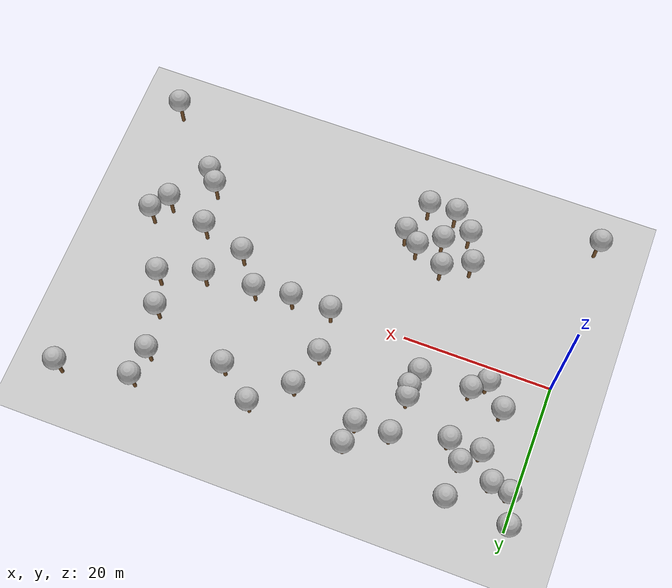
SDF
<sdf version='1.7'>
            <world name='default'>
                <light name='sun' type='directional'>
                <cast_shadows>1</cast_shadows>
                <pose>0 0 10 0 -0 0</pose>
                <diffuse>0.8 0.8 0.8 1</diffuse>
                <specular>0.2 0.2 0.2 1</specular>
                <attenuation>
                    <range>1000</range>
                    <constant>0.9</constant>
                    <linear>0.01</linear>
                    <quadratic>0.001</quadratic>
                </attenuation>
                <direction>-0.5 0.1 -0.9</direction>
                <spot>
                    <inner_angle>0</inner_angle>
                    <outer_angle>0</outer_angle>
                    <falloff>0</falloff>
                </spot>
                </light>
                <model name='ground_plane'>
                <static>1</static>
                <link name='link'>
                    <collision name='collision'>
                    <geometry>
                        <plane>
                        <normal>0 0 1</normal>
                        <size>100 100</size>
                        </plane>
                    </geometry>
                    <surface>
                        <contact>
                        <collide_bitmask>65535</collide_bitmask>
                        <ode/>
                        </contact>
                        <friction>
                        <ode>
                            <mu>100</mu>
                            <mu2>50</mu2>
                        </ode>
                        <torsional>
                            <ode/>
                        </torsional>
                        </friction>
                        <bounce/>
                    </surface>
                    <max_contacts>10</max_contacts>
                    </collision>
                    <visual name='visual'>
                    <cast_shadows>0</cast_shadows>
                    <geometry>
                        <plane>
                        <normal>0 0 1</normal>
                        <size>100 100</size>
                        </plane>
                    </geometry>
                    <material>
                        <script>
                        <uri>file://media/materials/scripts/gazebo.material</uri>
                        <name>Gazebo/Grey</name>
                        </script>
                    </material>
                    </visual>
                    <self_collide>0</self_collide>
                    <enable_wind>0</enable_wind>
                    <kinematic>0</kinematic>
                </link>
                </model>
                <gravity>0 0 -9.8</gravity>
                <magnetic_field>6e-06 2.3e-05 -4.2e-05</magnetic_field>
                <atmosphere type='adiabatic'/>
                <physics type='ode'>
                <max_step_size>0.001</max_step_size>
                <real_time_factor>1</real_time_factor>
                <real_time_update_rate>1000</real_time_update_rate>
                </physics>
                <scene>
                <ambient>0.4 0.4 0.4 1</ambient>
                <background>0.7 0.7 0.7 1</background>
                <shadows>1</shadows>
                </scene>
                <wind/>
                <spherical_coordinates>
                <surface_model>EARTH_WGS84</surface_model>
                <latitude_deg>0</latitude_deg>
                <longitude_deg>0</longitude_deg>
                <elevation>0</elevation>
                <heading_deg>0</heading_deg>
                </spherical_coordinates>

    <model name='tree_simple498'>
      <static>1</static>
      <link name='link'>
        <pose frame=''>0 0 0.1 0 -0 0</pose>
        <collision name='collision_trunk'>
          <pose frame=''>0 0 2 0 -0 0</pose>
          <geometry>
            <cylinder>
              <radius>0.25</radius>
              <length>4</length>
            </cylinder>
          </geometry>
        </collision>
        <collision name='collision_treetop'>
          <pose frame=''>0 0 5.2 0 -0 0</pose>
          <geometry>
            <sphere>
              <radius>1.5</radius>
            </sphere>
          </geometry>
        </collision>
        <visual name='trunk'>
          <pose frame=''>0 0 2 0 -0 0</pose>
          <geometry>
            <cylinder>
              <radius>0.25</radius>
              <length>4</length>
            </cylinder>
          </geometry>
          <material>
            <script>
              <uri>model://tree_simple/scripts</uri>
              <uri>model://tree_simple/materials/textures</uri>
              <name>TreeSimple/Trunk</name>
            </script>
          </material>
        </visual>
        <visual name='treetop'>
          <pose frame=''>0 0 5.2 0 -0 0</pose>
          <geometry>
            <sphere>
              <radius>1.5</radius>
            </sphere>
          </geometry>
          <material>
            <script>
              <uri>model://tree_simple/scripts</uri>
              <uri>model://tree_simple/materials/textures</uri>
              <name>TreeSimple/Treetop</name>
            </script>
          </material>
        </visual>
        <self_collide>0</self_collide>
        <kinematic>0</kinematic>
      </link>
      <pose frame=''>0.0 20.0 0 0 -0 0</pose>
    </model>
        <model name='tree_simple497'>
      <static>1</static>
      <link name='link'>
        <pose frame=''>0 0 0.1 0 -0 0</pose>
        <collision name='collision_trunk'>
          <pose frame=''>0 0 2 0 -0 0</pose>
          <geometry>
            <cylinder>
              <radius>0.25</radius>
              <length>4</length>
            </cylinder>
          </geometry>
        </collision>
        <collision name='collision_treetop'>
          <pose frame=''>0 0 5.2 0 -0 0</pose>
          <geometry>
            <sphere>
              <radius>1.5</radius>
            </sphere>
          </geometry>
        </collision>
        <visual name='trunk'>
          <pose frame=''>0 0 2 0 -0 0</pose>
          <geometry>
            <cylinder>
              <radius>0.25</radius>
              <length>4</length>
            </cylinder>
          </geometry>
          <material>
            <script>
              <uri>model://tree_simple/scripts</uri>
              <uri>model://tree_simple/materials/textures</uri>
              <name>TreeSimple/Trunk</name>
            </script>
          </material>
        </visual>
        <visual name='treetop'>
          <pose frame=''>0 0 5.2 0 -0 0</pose>
          <geometry>
            <sphere>
              <radius>1.5</radius>
            </sphere>
          </geometry>
          <material>
            <script>
              <uri>model://tree_simple/scripts</uri>
              <uri>model://tree_simple/materials/textures</uri>
              <name>TreeSimple/Treetop</name>
            </script>
          </material>
        </visual>
        <self_collide>0</self_collide>
        <kinematic>0</kinematic>
      </link>
      <pose frame=''>0.0 -20.0 0 0 -0 0</pose>
    </model>
        <model name='tree_simple496'>
      <static>1</static>
      <link name='link'>
        <pose frame=''>0 0 0.1 0 -0 0</pose>
        <collision name='collision_trunk'>
          <pose frame=''>0 0 2 0 -0 0</pose>
          <geometry>
            <cylinder>
              <radius>0.25</radius>
              <length>4</length>
            </cylinder>
          </geometry>
        </collision>
        <collision name='collision_treetop'>
          <pose frame=''>0 0 5.2 0 -0 0</pose>
          <geometry>
            <sphere>
              <radius>1.5</radius>
            </sphere>
          </geometry>
        </collision>
        <visual name='trunk'>
          <pose frame=''>0 0 2 0 -0 0</pose>
          <geometry>
            <cylinder>
              <radius>0.25</radius>
              <length>4</length>
            </cylinder>
          </geometry>
          <material>
            <script>
              <uri>model://tree_simple/scripts</uri>
              <uri>model://tree_simple/materials/textures</uri>
              <name>TreeSimple/Trunk</name>
            </script>
          </material>
        </visual>
        <visual name='treetop'>
          <pose frame=''>0 0 5.2 0 -0 0</pose>
          <geometry>
            <sphere>
              <radius>1.5</radius>
            </sphere>
          </geometry>
          <material>
            <script>
              <uri>model://tree_simple/scripts</uri>
              <uri>model://tree_simple/materials/textures</uri>
              <name>TreeSimple/Treetop</name>
            </script>
          </material>
        </visual>
        <self_collide>0</self_collide>
        <kinematic>0</kinematic>
      </link>
      <pose frame=''>60.0 20.0 0 0 -0 0</pose>
    </model>
        <model name='tree_simple495'>
      <static>1</static>
      <link name='link'>
        <pose frame=''>0 0 0.1 0 -0 0</pose>
        <collision name='collision_trunk'>
          <pose frame=''>0 0 2 0 -0 0</pose>
          <geometry>
            <cylinder>
              <radius>0.25</radius>
              <length>4</length>
            </cylinder>
          </geometry>
        </collision>
        <collision name='collision_treetop'>
          <pose frame=''>0 0 5.2 0 -0 0</pose>
          <geometry>
            <sphere>
              <radius>1.5</radius>
            </sphere>
          </geometry>
        </collision>
        <visual name='trunk'>
          <pose frame=''>0 0 2 0 -0 0</pose>
          <geometry>
            <cylinder>
              <radius>0.25</radius>
              <length>4</length>
            </cylinder>
          </geometry>
          <material>
            <script>
              <uri>model://tree_simple/scripts</uri>
              <uri>model://tree_simple/materials/textures</uri>
              <name>TreeSimple/Trunk</name>
            </script>
          </material>
        </visual>
        <visual name='treetop'>
          <pose frame=''>0 0 5.2 0 -0 0</pose>
          <geometry>
            <sphere>
              <radius>1.5</radius>
            </sphere>
          </geometry>
          <material>
            <script>
              <uri>model://tree_simple/scripts</uri>
              <uri>model://tree_simple/materials/textures</uri>
              <name>TreeSimple/Treetop</name>
            </script>
          </material>
        </visual>
        <self_collide>0</self_collide>
        <kinematic>0</kinematic>
      </link>
      <pose frame=''>60.0 -20.0 0 0 -0 0</pose>
    </model>
    <model name="tree_10_0"><pose frame="">16.4 5.24 0 0 -0 0</pose><static>1</static><link name="link"><pose frame="">0 0 0.1 0 -0 0</pose><collision name="collision_trunk"><pose frame="">0 0 2 0 -0 0</pose><geometry><cylinder><radius>0.25</radius><length>4</length></cylinder></geometry></collision><collision name="collision_treetop"><pose frame="">0 0 5.2 0 -0 0</pose><geometry><sphere><radius>1.5</radius></sphere></geometry></collision><visual name="trunk"><pose frame="">0 0 2 0 -0 0</pose><geometry><cylinder><radius>0.25</radius><length>4</length></cylinder></geometry><material><script><uri>model://tree_simple/scripts</uri><uri>model://tree_simple/materials/textures</uri><name>TreeSimple/Trunk</name></script></material></visual><visual name="treetop"><pose frame="">0 0 5.2 0 -0 0</pose><geometry><sphere><radius>1.5</radius></sphere></geometry><material><script><uri>model://tree_simple/scripts</uri><uri>model://tree_simple/materials/textures</uri><name>TreeSimple/Treetop</name></script></material></visual><self_collide>0</self_collide><kinematic>0</kinematic></link></model><model name="tree_10_1"><pose frame="">51.13 8.67 0 0 -0 0</pose><static>1</static><link name="link"><pose frame="">0 0 0.1 0 -0 0</pose><collision name="collision_trunk"><pose frame="">0 0 2 0 -0 0</pose><geometry><cylinder><radius>0.25</radius><length>4</length></cylinder></geometry></collision><collision name="collision_treetop"><pose frame="">0 0 5.2 0 -0 0</pose><geometry><sphere><radius>1.5</radius></sphere></geometry></collision><visual name="trunk"><pose frame="">0 0 2 0 -0 0</pose><geometry><cylinder><radius>0.25</radius><length>4</length></cylinder></geometry><material><script><uri>model://tree_simple/scripts</uri><uri>model://tree_simple/materials/textures</uri><name>TreeSimple/Trunk</name></script></material></visual><visual name="treetop"><pose frame="">0 0 5.2 0 -0 0</pose><geometry><sphere><radius>1.5</radius></sphere></geometry><material><script><uri>model://tree_simple/scripts</uri><uri>model://tree_simple/materials/textures</uri><name>TreeSimple/Treetop</name></script></material></visual><self_collide>0</self_collide><kinematic>0</kinematic></link></model><model name="tree_10_2"><pose frame="">19.11 -17.6 0 0 -0 0</pose><static>1</static><link name="link"><pose frame="">0 0 0.1 0 -0 0</pose><collision name="collision_trunk"><pose frame="">0 0 2 0 -0 0</pose><geometry><cylinder><radius>0.25</radius><length>4</length></cylinder></geometry></collision><collision name="collision_treetop"><pose frame="">0 0 5.2 0 -0 0</pose><geometry><sphere><radius>1.5</radius></sphere></geometry></collision><visual name="trunk"><pose frame="">0 0 2 0 -0 0</pose><geometry><cylinder><radius>0.25</radius><length>4</length></cylinder></geometry><material><script><uri>model://tree_simple/scripts</uri><uri>model://tree_simple/materials/textures</uri><name>TreeSimple/Trunk</name></script></material></visual><visual name="treetop"><pose frame="">0 0 5.2 0 -0 0</pose><geometry><sphere><radius>1.5</radius></sphere></geometry><material><script><uri>model://tree_simple/scripts</uri><uri>model://tree_simple/materials/textures</uri><name>TreeSimple/Treetop</name></script></material></visual><self_collide>0</self_collide><kinematic>0</kinematic></link></model><model name="tree_10_3"><pose frame="">49.75 -4.27 0 0 -0 0</pose><static>1</static><link name="link"><pose frame="">0 0 0.1 0 -0 0</pose><collision name="collision_trunk"><pose frame="">0 0 2 0 -0 0</pose><geometry><cylinder><radius>0.25</radius><length>4</length></cylinder></geometry></collision><collision name="collision_treetop"><pose frame="">0 0 5.2 0 -0 0</pose><geometry><sphere><radius>1.5</radius></sphere></geometry></collision><visual name="trunk"><pose frame="">0 0 2 0 -0 0</pose><geometry><cylinder><radius>0.25</radius><length>4</length></cylinder></geometry><material><script><uri>model://tree_simple/scripts</uri><uri>model://tree_simple/materials/textures</uri><name>TreeSimple/Trunk</name></script></material></visual><visual name="treetop"><pose frame="">0 0 5.2 0 -0 0</pose><geometry><sphere><radius>1.5</radius></sphere></geometry><material><script><uri>model://tree_simple/scripts</uri><uri>model://tree_simple/materials/textures</uri><name>TreeSimple/Treetop</name></script></material></visual><self_collide>0</self_collide><kinematic>0</kinematic></link></model><model name="tree_10_4"><pose frame="">19.48 -13.24 0 0 -0 0</pose><static>1</static><link name="link"><pose frame="">0 0 0.1 0 -0 0</pose><collision name="collision_trunk"><pose frame="">0 0 2 0 -0 0</pose><geometry><cylinder><radius>0.25</radius><length>4</length></cylinder></geometry></collision><collision name="collision_treetop"><pose frame="">0 0 5.2 0 -0 0</pose><geometry><sphere><radius>1.5</radius></sphere></geometry></collision><visual name="trunk"><pose frame="">0 0 2 0 -0 0</pose><geometry><cylinder><radius>0.25</radius><length>4</length></cylinder></geometry><material><script><uri>model://tree_simple/scripts</uri><uri>model://tree_simple/materials/textures</uri><name>TreeSimple/Trunk</name></script></material></visual><visual name="treetop"><pose frame="">0 0 5.2 0 -0 0</pose><geometry><sphere><radius>1.5</radius></sphere></geometry><material><script><uri>model://tree_simple/scripts</uri><uri>model://tree_simple/materials/textures</uri><name>TreeSimple/Treetop</name></script></material></visual><self_collide>0</self_collide><kinematic>0</kinematic></link></model><model name="tree_10_5"><pose frame="">5.05 6.35 0 0 -0 0</pose><static>1</static><link name="link"><pose frame="">0 0 0.1 0 -0 0</pose><collision name="collision_trunk"><pose frame="">0 0 2 0 -0 0</pose><geometry><cylinder><radius>0.25</radius><length>4</length></cylinder></geometry></collision><collision name="collision_treetop"><pose frame="">0 0 5.2 0 -0 0</pose><geometry><sphere><radius>1.5</radius></sphere></geometry></collision><visual name="trunk"><pose frame="">0 0 2 0 -0 0</pose><geometry><cylinder><radius>0.25</radius><length>4</length></cylinder></geometry><material><script><uri>model://tree_simple/scripts</uri><uri>model://tree_simple/materials/textures</uri><name>TreeSimple/Trunk</name></script></material></visual><visual name="treetop"><pose frame="">0 0 5.2 0 -0 0</pose><geometry><sphere><radius>1.5</radius></sphere></geometry><material><script><uri>model://tree_simple/scripts</uri><uri>model://tree_simple/materials/textures</uri><name>TreeSimple/Treetop</name></script></material></visual><self_collide>0</self_collide><kinematic>0</kinematic></link></model><model name="tree_10_6"><pose frame="">10.06 12.26 0 0 -0 0</pose><static>1</static><link name="link"><pose frame="">0 0 0.1 0 -0 0</pose><collision name="collision_trunk"><pose frame="">0 0 2 0 -0 0</pose><geometry><cylinder><radius>0.25</radius><length>4</length></cylinder></geometry></collision><collision name="collision_treetop"><pose frame="">0 0 5.2 0 -0 0</pose><geometry><sphere><radius>1.5</radius></sphere></geometry></collision><visual name="trunk"><pose frame="">0 0 2 0 -0 0</pose><geometry><cylinder><radius>0.25</radius><length>4</length></cylinder></geometry><material><script><uri>model://tree_simple/scripts</uri><uri>model://tree_simple/materials/textures</uri><name>TreeSimple/Trunk</name></script></material></visual><visual name="treetop"><pose frame="">0 0 5.2 0 -0 0</pose><geometry><sphere><radius>1.5</radius></sphere></geometry><material><script><uri>model://tree_simple/scripts</uri><uri>model://tree_simple/materials/textures</uri><name>TreeSimple/Treetop</name></script></material></visual><self_collide>0</self_collide><kinematic>0</kinematic></link></model><model name="tree_10_7"><pose frame="">16.97 7.5 0 0 -0 0</pose><static>1</static><link name="link"><pose frame="">0 0 0.1 0 -0 0</pose><collision name="collision_trunk"><pose frame="">0 0 2 0 -0 0</pose><geometry><cylinder><radius>0.25</radius><length>4</length></cylinder></geometry></collision><collision name="collision_treetop"><pose frame="">0 0 5.2 0 -0 0</pose><geometry><sphere><radius>1.5</radius></sphere></geometry></collision><visual name="trunk"><pose frame="">0 0 2 0 -0 0</pose><geometry><cylinder><radius>0.25</radius><length>4</length></cylinder></geometry><material><script><uri>model://tree_simple/scripts</uri><uri>model://tree_simple/materials/textures</uri><name>TreeSimple/Trunk</name></script></material></visual><visual name="treetop"><pose frame="">0 0 5.2 0 -0 0</pose><geometry><sphere><radius>1.5</radius></sphere></geometry><material><script><uri>model://tree_simple/scripts</uri><uri>model://tree_simple/materials/textures</uri><name>TreeSimple/Treetop</name></script></material></visual><self_collide>0</self_collide><kinematic>0</kinematic></link></model><model name="tree_10_8"><pose frame="">52.17 -11.94 0 0 -0 0</pose><static>1</static><link name="link"><pose frame="">0 0 0.1 0 -0 0</pose><collision name="collision_trunk"><pose frame="">0 0 2 0 -0 0</pose><geometry><cylinder><radius>0.25</radius><length>4</length></cylinder></geometry></collision><collision name="collision_treetop"><pose frame="">0 0 5.2 0 -0 0</pose><geometry><sphere><radius>1.5</radius></sphere></geometry></collision><visual name="trunk"><pose frame="">0 0 2 0 -0 0</pose><geometry><cylinder><radius>0.25</radius><length>4</length></cylinder></geometry><material><script><uri>model://tree_simple/scripts</uri><uri>model://tree_simple/materials/textures</uri><name>TreeSimple/Trunk</name></script></material></visual><visual name="treetop"><pose frame="">0 0 5.2 0 -0 0</pose><geometry><sphere><radius>1.5</radius></sphere></geometry><material><script><uri>model://tree_simple/scripts</uri><uri>model://tree_simple/materials/textures</uri><name>TreeSimple/Treetop</name></script></material></visual><self_collide>0</self_collide><kinematic>0</kinematic></link></model><model name="tree_10_9"><pose frame="">17.16 14.14 0 0 -0 0</pose><static>1</static><link name="link"><pose frame="">0 0 0.1 0 -0 0</pose><collision name="collision_trunk"><pose frame="">0 0 2 0 -0 0</pose><geometry><cylinder><radius>0.25</radius><length>4</length></cylinder></geometry></collision><collision name="collision_treetop"><pose frame="">0 0 5.2 0 -0 0</pose><geometry><sphere><radius>1.5</radius></sphere></geometry></collision><visual name="trunk"><pose frame="">0 0 2 0 -0 0</pose><geometry><cylinder><radius>0.25</radius><length>4</length></cylinder></geometry><material><script><uri>model://tree_simple/scripts</uri><uri>model://tree_simple/materials/textures</uri><name>TreeSimple/Trunk</name></script></material></visual><visual name="treetop"><pose frame="">0 0 5.2 0 -0 0</pose><geometry><sphere><radius>1.5</radius></sphere></geometry><material><script><uri>model://tree_simple/scripts</uri><uri>model://tree_simple/materials/textures</uri><name>TreeSimple/Treetop</name></script></material></visual><self_collide>0</self_collide><kinematic>0</kinematic></link></model><model name="tree_10_10"><pose frame="">40.01 12.94 0 0 -0 0</pose><static>1</static><link name="link"><pose frame="">0 0 0.1 0 -0 0</pose><collision name="collision_trunk"><pose frame="">0 0 2 0 -0 0</pose><geometry><cylinder><radius>0.25</radius><length>4</length></cylinder></geometry></collision><collision name="collision_treetop"><pose frame="">0 0 5.2 0 -0 0</pose><geometry><sphere><radius>1.5</radius></sphere></geometry></collision><visual name="trunk"><pose frame="">0 0 2 0 -0 0</pose><geometry><cylinder><radius>0.25</radius><length>4</length></cylinder></geometry><material><script><uri>model://tree_simple/scripts</uri><uri>model://tree_simple/materials/textures</uri><name>TreeSimple/Trunk</name></script></material></visual><visual name="treetop"><pose frame="">0 0 5.2 0 -0 0</pose><geometry><sphere><radius>1.5</radius></sphere></geometry><material><script><uri>model://tree_simple/scripts</uri><uri>model://tree_simple/materials/textures</uri><name>TreeSimple/Treetop</name></script></material></visual><self_collide>0</self_collide><kinematic>0</kinematic></link></model><model name="tree_10_11"><pose frame="">7.93 14.56 0 0 -0 0</pose><static>1</static><link name="link"><pose frame="">0 0 0.1 0 -0 0</pose><collision name="collision_trunk"><pose frame="">0 0 2 0 -0 0</pose><geometry><cylinder><radius>0.25</radius><length>4</length></cylinder></geometry></collision><collision name="collision_treetop"><pose frame="">0 0 5.2 0 -0 0</pose><geometry><sphere><radius>1.5</radius></sphere></geometry></collision><visual name="trunk"><pose frame="">0 0 2 0 -0 0</pose><geometry><cylinder><radius>0.25</radius><length>4</length></cylinder></geometry><material><script><uri>model://tree_simple/scripts</uri><uri>model://tree_simple/materials/textures</uri><name>TreeSimple/Trunk</name></script></material></visual><visual name="treetop"><pose frame="">0 0 5.2 0 -0 0</pose><geometry><sphere><radius>1.5</radius></sphere></geometry><material><script><uri>model://tree_simple/scripts</uri><uri>model://tree_simple/materials/textures</uri><name>TreeSimple/Treetop</name></script></material></visual><self_collide>0</self_collide><kinematic>0</kinematic></link></model><model name="tree_10_12"><pose frame="">18.46 -9.52 0 0 -0 0</pose><static>1</static><link name="link"><pose frame="">0 0 0.1 0 -0 0</pose><collision name="collision_trunk"><pose frame="">0 0 2 0 -0 0</pose><geometry><cylinder><radius>0.25</radius><length>4</length></cylinder></geometry></collision><collision name="collision_treetop"><pose frame="">0 0 5.2 0 -0 0</pose><geometry><sphere><radius>1.5</radius></sphere></geometry></collision><visual name="trunk"><pose frame="">0 0 2 0 -0 0</pose><geometry><cylinder><radius>0.25</radius><length>4</length></cylinder></geometry><material><script><uri>model://tree_simple/scripts</uri><uri>model://tree_simple/materials/textures</uri><name>TreeSimple/Trunk</name></script></material></visual><visual name="treetop"><pose frame="">0 0 5.2 0 -0 0</pose><geometry><sphere><radius>1.5</radius></sphere></geometry><material><script><uri>model://tree_simple/scripts</uri><uri>model://tree_simple/materials/textures</uri><name>TreeSimple/Treetop</name></script></material></visual><self_collide>0</self_collide><kinematic>0</kinematic></link></model><model name="tree_10_13"><pose frame="">1.1 16.11 0 0 -0 0</pose><static>1</static><link name="link"><pose frame="">0 0 0.1 0 -0 0</pose><collision name="collision_trunk"><pose frame="">0 0 2 0 -0 0</pose><geometry><cylinder><radius>0.25</radius><length>4</length></cylinder></geometry></collision><collision name="collision_treetop"><pose frame="">0 0 5.2 0 -0 0</pose><geometry><sphere><radius>1.5</radius></sphere></geometry></collision><visual name="trunk"><pose frame="">0 0 2 0 -0 0</pose><geometry><cylinder><radius>0.25</radius><length>4</length></cylinder></geometry><material><script><uri>model://tree_simple/scripts</uri><uri>model://tree_simple/materials/textures</uri><name>TreeSimple/Trunk</name></script></material></visual><visual name="treetop"><pose frame="">0 0 5.2 0 -0 0</pose><geometry><sphere><radius>1.5</radius></sphere></geometry><material><script><uri>model://tree_simple/scripts</uri><uri>model://tree_simple/materials/textures</uri><name>TreeSimple/Treetop</name></script></material></visual><self_collide>0</self_collide><kinematic>0</kinematic></link></model><model name="tree_10_14"><pose frame="">49.81 14.46 0 0 -0 0</pose><static>1</static><link name="link"><pose frame="">0 0 0.1 0 -0 0</pose><collision name="collision_trunk"><pose frame="">0 0 2 0 -0 0</pose><geometry><cylinder><radius>0.25</radius><length>4</length></cylinder></geometry></collision><collision name="collision_treetop"><pose frame="">0 0 5.2 0 -0 0</pose><geometry><sphere><radius>1.5</radius></sphere></geometry></collision><visual name="trunk"><pose frame="">0 0 2 0 -0 0</pose><geometry><cylinder><radius>0.25</radius><length>4</length></cylinder></geometry><material><script><uri>model://tree_simple/scripts</uri><uri>model://tree_simple/materials/textures</uri><name>TreeSimple/Trunk</name></script></material></visual><visual name="treetop"><pose frame="">0 0 5.2 0 -0 0</pose><geometry><sphere><radius>1.5</radius></sphere></geometry><material><script><uri>model://tree_simple/scripts</uri><uri>model://tree_simple/materials/textures</uri><name>TreeSimple/Treetop</name></script></material></visual><self_collide>0</self_collide><kinematic>0</kinematic></link></model><model name="tree_10_15"><pose frame="">22.43 -11.23 0 0 -0 0</pose><static>1</static><link name="link"><pose frame="">0 0 0.1 0 -0 0</pose><collision name="collision_trunk"><pose frame="">0 0 2 0 -0 0</pose><geometry><cylinder><radius>0.25</radius><length>4</length></cylinder></geometry></collision><collision name="collision_treetop"><pose frame="">0 0 5.2 0 -0 0</pose><geometry><sphere><radius>1.5</radius></sphere></geometry></collision><visual name="trunk"><pose frame="">0 0 2 0 -0 0</pose><geometry><cylinder><radius>0.25</radius><length>4</length></cylinder></geometry><material><script><uri>model://tree_simple/scripts</uri><uri>model://tree_simple/materials/textures</uri><name>TreeSimple/Trunk</name></script></material></visual><visual name="treetop"><pose frame="">0 0 5.2 0 -0 0</pose><geometry><sphere><radius>1.5</radius></sphere></geometry><material><script><uri>model://tree_simple/scripts</uri><uri>model://tree_simple/materials/textures</uri><name>TreeSimple/Treetop</name></script></material></visual><self_collide>0</self_collide><kinematic>0</kinematic></link></model><model name="tree_10_16"><pose frame="">24.45 -12.68 0 0 -0 0</pose><static>1</static><link name="link"><pose frame="">0 0 0.1 0 -0 0</pose><collision name="collision_trunk"><pose frame="">0 0 2 0 -0 0</pose><geometry><cylinder><radius>0.25</radius><length>4</length></cylinder></geometry></collision><collision name="collision_treetop"><pose frame="">0 0 5.2 0 -0 0</pose><geometry><sphere><radius>1.5</radius></sphere></geometry></collision><visual name="trunk"><pose frame="">0 0 2 0 -0 0</pose><geometry><cylinder><radius>0.25</radius><length>4</length></cylinder></geometry><material><script><uri>model://tree_simple/scripts</uri><uri>model://tree_simple/materials/textures</uri><name>TreeSimple/Trunk</name></script></material></visual><visual name="treetop"><pose frame="">0 0 5.2 0 -0 0</pose><geometry><sphere><radius>1.5</radius></sphere></geometry><material><script><uri>model://tree_simple/scripts</uri><uri>model://tree_simple/materials/textures</uri><name>TreeSimple/Treetop</name></script></material></visual><self_collide>0</self_collide><kinematic>0</kinematic></link></model><model name="tree_10_17"><pose frame="">5.86 12.35 0 0 -0 0</pose><static>1</static><link name="link"><pose frame="">0 0 0.1 0 -0 0</pose><collision name="collision_trunk"><pose frame="">0 0 2 0 -0 0</pose><geometry><cylinder><radius>0.25</radius><length>4</length></cylinder></geometry></collision><collision name="collision_treetop"><pose frame="">0 0 5.2 0 -0 0</pose><geometry><sphere><radius>1.5</radius></sphere></geometry></collision><visual name="trunk"><pose frame="">0 0 2 0 -0 0</pose><geometry><cylinder><radius>0.25</radius><length>4</length></cylinder></geometry><material><script><uri>model://tree_simple/scripts</uri><uri>model://tree_simple/materials/textures</uri><name>TreeSimple/Trunk</name></script></material></visual><visual name="treetop"><pose frame="">0 0 5.2 0 -0 0</pose><geometry><sphere><radius>1.5</radius></sphere></geometry><material><script><uri>model://tree_simple/scripts</uri><uri>model://tree_simple/materials/textures</uri><name>TreeSimple/Treetop</name></script></material></visual><self_collide>0</self_collide><kinematic>0</kinematic></link></model><model name="tree_10_18"><pose frame="">22.82 -17.43 0 0 -0 0</pose><static>1</static><link name="link"><pose frame="">0 0 0.1 0 -0 0</pose><collision name="collision_trunk"><pose frame="">0 0 2 0 -0 0</pose><geometry><cylinder><radius>0.25</radius><length>4</length></cylinder></geometry></collision><collision name="collision_treetop"><pose frame="">0 0 5.2 0 -0 0</pose><geometry><sphere><radius>1.5</radius></sphere></geometry></collision><visual name="trunk"><pose frame="">0 0 2 0 -0 0</pose><geometry><cylinder><radius>0.25</radius><length>4</length></cylinder></geometry><material><script><uri>model://tree_simple/scripts</uri><uri>model://tree_simple/materials/textures</uri><name>TreeSimple/Trunk</name></script></material></visual><visual name="treetop"><pose frame="">0 0 5.2 0 -0 0</pose><geometry><sphere><radius>1.5</radius></sphere></geometry><material><script><uri>model://tree_simple/scripts</uri><uri>model://tree_simple/materials/textures</uri><name>TreeSimple/Treetop</name></script></material></visual><self_collide>0</self_collide><kinematic>0</kinematic></link></model><model name="tree_10_19"><pose frame="">22.24 17.36 0 0 -0 0</pose><static>1</static><link name="link"><pose frame="">0 0 0.1 0 -0 0</pose><collision name="collision_trunk"><pose frame="">0 0 2 0 -0 0</pose><geometry><cylinder><radius>0.25</radius><length>4</length></cylinder></geometry></collision><collision name="collision_treetop"><pose frame="">0 0 5.2 0 -0 0</pose><geometry><sphere><radius>1.5</radius></sphere></geometry></collision><visual name="trunk"><pose frame="">0 0 2 0 -0 0</pose><geometry><cylinder><radius>0.25</radius><length>4</length></cylinder></geometry><material><script><uri>model://tree_simple/scripts</uri><uri>model://tree_simple/materials/textures</uri><name>TreeSimple/Trunk</name></script></material></visual><visual name="treetop"><pose frame="">0 0 5.2 0 -0 0</pose><geometry><sphere><radius>1.5</radius></sphere></geometry><material><script><uri>model://tree_simple/scripts</uri><uri>model://tree_simple/materials/textures</uri><name>TreeSimple/Treetop</name></script></material></visual><self_collide>0</self_collide><kinematic>0</kinematic></link></model><model name="tree_10_20"><pose frame="">9.61 5.12 0 0 -0 0</pose><static>1</static><link name="link"><pose frame="">0 0 0.1 0 -0 0</pose><collision name="collision_trunk"><pose frame="">0 0 2 0 -0 0</pose><geometry><cylinder><radius>0.25</radius><length>4</length></cylinder></geometry></collision><collision name="collision_treetop"><pose frame="">0 0 5.2 0 -0 0</pose><geometry><sphere><radius>1.5</radius></sphere></geometry></collision><visual name="trunk"><pose frame="">0 0 2 0 -0 0</pose><geometry><cylinder><radius>0.25</radius><length>4</length></cylinder></geometry><material><script><uri>model://tree_simple/scripts</uri><uri>model://tree_simple/materials/textures</uri><name>TreeSimple/Trunk</name></script></material></visual><visual name="treetop"><pose frame="">0 0 5.2 0 -0 0</pose><geometry><sphere><radius>1.5</radius></sphere></geometry><material><script><uri>model://tree_simple/scripts</uri><uri>model://tree_simple/materials/textures</uri><name>TreeSimple/Treetop</name></script></material></visual><self_collide>0</self_collide><kinematic>0</kinematic></link></model>
    <model name="tree_1_21">
  <pose frame="">30.67 12.39 0 0 -0 0</pose>
  <static>1</static>
  <link name="link">
    <pose frame="">0 0 0.1 0 -0 0</pose>
    <collision name="collision_trunk"><pose frame="">0 0 2 0 -0 0</pose><geometry><cylinder><radius>0.25</radius><length>4</length></cylinder></geometry></collision>
    <collision name="collision_treetop"><pose frame="">0 0 5.2 0 -0 0</pose><geometry><sphere><radius>1.5</radius></sphere></geometry></collision>
    <visual name="trunk"><pose frame="">0 0 2 0 -0 0</pose><geometry><cylinder><radius>0.25</radius><length>4</length></cylinder></geometry><material><script><uri>model://tree_simple/scripts</uri><uri>model://tree_simple/materials/textures</uri><name>TreeSimple/Trunk</name></script></material></visual>
    <visual name="treetop"><pose frame="">0 0 5.2 0 -0 0</pose><geometry><sphere><radius>1.5</radius></sphere></geometry><material><script><uri>model://tree_simple/scripts</uri><uri>model://tree_simple/materials/textures</uri><name>TreeSimple/Treetop</name></script></material></visual>
    <self_collide>0</self_collide><kinematic>0</kinematic>
  </link>
</model>
<model name="tree_1_22">
  <pose frame="">55.64 -6.28 0 0 -0 0</pose>
  <static>1</static>
  <link name="link">
    <pose frame="">0 0 0.1 0 -0 0</pose>
    <collision name="collision_trunk"><pose frame="">0 0 2 0 -0 0</pose><geometry><cylinder><radius>0.25</radius><length>4</length></cylinder></geometry></collision>
    <collision name="collision_treetop"><pose frame="">0 0 5.2 0 -0 0</pose><geometry><sphere><radius>1.5</radius></sphere></geometry></collision>
    <visual name="trunk"><pose frame="">0 0 2 0 -0 0</pose><geometry><cylinder><radius>0.25</radius><length>4</length></cylinder></geometry><material><script><uri>model://tree_simple/scripts</uri><uri>model://tree_simple/materials/textures</uri><name>TreeSimple/Trunk</name></script></material></visual>
    <visual name="treetop"><pose frame="">0 0 5.2 0 -0 0</pose><geometry><sphere><radius>1.5</radius></sphere></geometry><material><script><uri>model://tree_simple/scripts</uri><uri>model://tree_simple/materials/textures</uri><name>TreeSimple/Treetop</name></script></material></visual>
    <self_collide>0</self_collide><kinematic>0</kinematic>
  </link>
</model>
<model name="tree_1_23">
  <pose frame="">16.39 -15.28 0 0 -0 0</pose>
  <static>1</static>
  <link name="link">
    <pose frame="">0 0 0.1 0 -0 0</pose>
    <collision name="collision_trunk"><pose frame="">0 0 2 0 -0 0</pose><geometry><cylinder><radius>0.25</radius><length>4</length></cylinder></geometry></collision>
    <collision name="collision_treetop"><pose frame="">0 0 5.2 0 -0 0</pose><geometry><sphere><radius>1.5</radius></sphere></geometry></collision>
    <visual name="trunk"><pose frame="">0 0 2 0 -0 0</pose><geometry><cylinder><radius>0.25</radius><length>4</length></cylinder></geometry><material><script><uri>model://tree_simple/scripts</uri><uri>model://tree_simple/materials/textures</uri><name>TreeSimple/Trunk</name></script></material></visual>
    <visual name="treetop"><pose frame="">0 0 5.2 0 -0 0</pose><geometry><sphere><radius>1.5</radius></sphere></geometry><material><script><uri>model://tree_simple/scripts</uri><uri>model://tree_simple/materials/textures</uri><name>TreeSimple/Treetop</name></script></material></visual>
    <self_collide>0</self_collide><kinematic>0</kinematic>
  </link>
</model>
<model name="tree_1_24">
  <pose frame="">52.84 4.18 0 0 -0 0</pose>
  <static>1</static>
  <link name="link">
    <pose frame="">0 0 0.1 0 -0 0</pose>
    <collision name="collision_trunk"><pose frame="">0 0 2 0 -0 0</pose><geometry><cylinder><radius>0.25</radius><length>4</length></cylinder></geometry></collision>
    <collision name="collision_treetop"><pose frame="">0 0 5.2 0 -0 0</pose><geometry><sphere><radius>1.5</radius></sphere></geometry></collision>
    <visual name="trunk"><pose frame="">0 0 2 0 -0 0</pose><geometry><cylinder><radius>0.25</radius><length>4</length></cylinder></geometry><material><script><uri>model://tree_simple/scripts</uri><uri>model://tree_simple/materials/textures</uri><name>TreeSimple/Trunk</name></script></material></visual>
    <visual name="treetop"><pose frame="">0 0 5.2 0 -0 0</pose><geometry><sphere><radius>1.5</radius></sphere></geometry><material><script><uri>model://tree_simple/scripts</uri><uri>model://tree_simple/materials/textures</uri><name>TreeSimple/Treetop</name></script></material></visual>
    <self_collide>0</self_collide><kinematic>0</kinematic>
  </link>
</model>
<model name="tree_1_25">
  <pose frame="">8.27 19.36 0 0 -0 0</pose>
  <static>1</static>
  <link name="link">
    <pose frame="">0 0 0.1 0 -0 0</pose>
    <collision name="collision_trunk"><pose frame="">0 0 2 0 -0 0</pose><geometry><cylinder><radius>0.25</radius><length>4</length></cylinder></geometry></collision>
    <collision name="collision_treetop"><pose frame="">0 0 5.2 0 -0 0</pose><geometry><sphere><radius>1.5</radius></sphere></geometry></collision>
    <visual name="trunk"><pose frame="">0 0 2 0 -0 0</pose><geometry><cylinder><radius>0.25</radius><length>4</length></cylinder></geometry><material><script><uri>model://tree_simple/scripts</uri><uri>model://tree_simple/materials/textures</uri><name>TreeSimple/Trunk</name></script></material></visual>
    <visual name="treetop"><pose frame="">0 0 5.2 0 -0 0</pose><geometry><sphere><radius>1.5</radius></sphere></geometry><material><script><uri>model://tree_simple/scripts</uri><uri>model://tree_simple/materials/textures</uri><name>TreeSimple/Treetop</name></script></material></visual>
    <self_collide>0</self_collide><kinematic>0</kinematic>
  </link>
</model>
<model name="tree_1_26">
  <pose frame="">43.59 -2.37 0 0 -0 0</pose>
  <static>1</static>
  <link name="link">
    <pose frame="">0 0 0.1 0 -0 0</pose>
    <collision name="collision_trunk"><pose frame="">0 0 2 0 -0 0</pose><geometry><cylinder><radius>0.25</radius><length>4</length></cylinder></geometry></collision>
    <collision name="collision_treetop"><pose frame="">0 0 5.2 0 -0 0</pose><geometry><sphere><radius>1.5</radius></sphere></geometry></collision>
    <visual name="trunk"><pose frame="">0 0 2 0 -0 0</pose><geometry><cylinder><radius>0.25</radius><length>4</length></cylinder></geometry><material><script><uri>model://tree_simple/scripts</uri><uri>model://tree_simple/materials/textures</uri><name>TreeSimple/Trunk</name></script></material></visual>
    <visual name="treetop"><pose frame="">0 0 5.2 0 -0 0</pose><geometry><sphere><radius>1.5</radius></sphere></geometry><material><script><uri>model://tree_simple/scripts</uri><uri>model://tree_simple/materials/textures</uri><name>TreeSimple/Treetop</name></script></material></visual>
    <self_collide>0</self_collide><kinematic>0</kinematic>
  </link>
</model>
<model name="tree_1_27">
  <pose frame="">29.14 7.28 0 0 -0 0</pose>
  <static>1</static>
  <link name="link">
    <pose frame="">0 0 0.1 0 -0 0</pose>
    <collision name="collision_trunk"><pose frame="">0 0 2 0 -0 0</pose><geometry><cylinder><radius>0.25</radius><length>4</length></cylinder></geometry></collision>
    <collision name="collision_treetop"><pose frame="">0 0 5.2 0 -0 0</pose><geometry><sphere><radius>1.5</radius></sphere></geometry></collision>
    <visual name="trunk"><pose frame="">0 0 2 0 -0 0</pose><geometry><cylinder><radius>0.25</radius><length>4</length></cylinder></geometry><material><script><uri>model://tree_simple/scripts</uri><uri>model://tree_simple/materials/textures</uri><name>TreeSimple/Trunk</name></script></material></visual>
    <visual name="treetop"><pose frame="">0 0 5.2 0 -0 0</pose><geometry><sphere><radius>1.5</radius></sphere></geometry><material><script><uri>model://tree_simple/scripts</uri><uri>model://tree_simple/materials/textures</uri><name>TreeSimple/Treetop</name></script></material></visual>
    <self_collide>0</self_collide><kinematic>0</kinematic>
  </link>
</model>
<model name="tree_1_28">
  <pose frame="">14.82 -11.29 0 0 -0 0</pose>
  <static>1</static>
  <link name="link">
    <pose frame="">0 0 0.1 0 -0 0</pose>
    <collision name="collision_trunk"><pose frame="">0 0 2 0 -0 0</pose><geometry><cylinder><radius>0.25</radius><length>4</length></cylinder></geometry></collision>
    <collision name="collision_treetop"><pose frame="">0 0 5.2 0 -0 0</pose><geometry><sphere><radius>1.5</radius></sphere></geometry></collision>
    <visual name="trunk"><pose frame="">0 0 2 0 -0 0</pose><geometry><cylinder><radius>0.25</radius><length>4</length></cylinder></geometry><material><script><uri>model://tree_simple/scripts</uri><uri>model://tree_simple/materials/textures</uri><name>TreeSimple/Trunk</name></script></material></visual>
    <visual name="treetop"><pose frame="">0 0 5.2 0 -0 0</pose><geometry><sphere><radius>1.5</radius></sphere></geometry><material><script><uri>model://tree_simple/scripts</uri><uri>model://tree_simple/materials/textures</uri><name>TreeSimple/Treetop</name></script></material></visual>
    <self_collide>0</self_collide><kinematic>0</kinematic>
  </link>
</model>
<model name="tree_1_29">
  <pose frame="">50.37 18.46 0 0 -0 0</pose>
  <static>1</static>
  <link name="link">
    <pose frame="">0 0 0.1 0 -0 0</pose>
    <collision name="collision_trunk"><pose frame="">0 0 2 0 -0 0</pose><geometry><cylinder><radius>0.25</radius><length>4</length></cylinder></geometry></collision>
    <collision name="collision_treetop"><pose frame="">0 0 5.2 0 -0 0</pose><geometry><sphere><radius>1.5</radius></sphere></geometry></collision>
    <visual name="trunk"><pose frame="">0 0 2 0 -0 0</pose><geometry><cylinder><radius>0.25</radius><length>4</length></cylinder></geometry><material><script><uri>model://tree_simple/scripts</uri><uri>model://tree_simple/materials/textures</uri><name>TreeSimple/Trunk</name></script></material></visual>
    <visual name="treetop"><pose frame="">0 0 5.2 0 -0 0</pose><geometry><sphere><radius>1.5</radius></sphere></geometry><material><script><uri>model://tree_simple/scripts</uri><uri>model://tree_simple/materials/textures</uri><name>TreeSimple/Treetop</name></script></material></visual>
    <self_collide>0</self_collide><kinematic>0</kinematic>
  </link>
</model>
<model name="tree_1_30">
  <pose frame="">35.28 1.28 0 0 -0 0</pose>
  <static>1</static>
  <link name="link">
    <pose frame="">0 0 0.1 0 -0 0</pose>
    <collision name="collision_trunk"><pose frame="">0 0 2 0 -0 0</pose><geometry><cylinder><radius>0.25</radius><length>4</length></cylinder></geometry></collision>
    <collision name="collision_treetop"><pose frame="">0 0 5.2 0 -0 0</pose><geometry><sphere><radius>1.5</radius></sphere></geometry></collision>
    <visual name="trunk"><pose frame="">0 0 2 0 -0 0</pose><geometry><cylinder><radius>0.25</radius><length>4</length></cylinder></geometry><material><script><uri>model://tree_simple/scripts</uri><uri>model://tree_simple/materials/textures</uri><name>TreeSimple/Trunk</name></script></material></visual>
    <visual name="treetop"><pose frame="">0 0 5.2 0 -0 0</pose><geometry><sphere><radius>1.5</radius></sphere></geometry><material><script><uri>model://tree_simple/scripts</uri><uri>model://tree_simple/materials/textures</uri><name>TreeSimple/Treetop</name></script></material></visual>
    <self_collide>0</self_collide><kinematic>0</kinematic>
  </link>
</model>
<model name="tree_1_31">
  <pose frame="">21.75 14.28 0 0 -0 0</pose>
  <static>1</static>
  <link name="link">
    <pose frame="">0 0 0.1 0 -0 0</pose>
    <collision name="collision_trunk"><pose frame="">0 0 2 0 -0 0</pose><geometry><cylinder><radius>0.25</radius><length>4</length></cylinder></geometry></collision>
    <collision name="collision_treetop"><pose frame="">0 0 5.2 0 -0 0</pose><geometry><sphere><radius>1.5</radius></sphere></geometry></collision>
    <visual name="trunk"><pose frame="">0 0 2 0 -0 0</pose><geometry><cylinder><radius>0.25</radius><length>4</length></cylinder></geometry><material><script><uri>model://tree_simple/scripts</uri><uri>model://tree_simple/materials/textures</uri><name>TreeSimple/Trunk</name></script></material></visual>
    <visual name="treetop"><pose frame="">0 0 5.2 0 -0 0</pose><geometry><sphere><radius>1.5</radius></sphere></geometry><material><script><uri>model://tree_simple/scripts</uri><uri>model://tree_simple/materials/textures</uri><name>TreeSimple/Treetop</name></script></material></visual>
    <self_collide>0</self_collide><kinematic>0</kinematic>
  </link>
</model>
<model name="tree_1_32">
  <pose frame="">35.27 16.45 0 0 -0 0</pose>
  <static>1</static>
  <link name="link">
    <pose frame="">0 0 0.1 0 -0 0</pose>
    <collision name="collision_trunk"><pose frame="">0 0 2 0 -0 0</pose><geometry><cylinder><radius>0.25</radius><length>4</length></cylinder></geometry></collision>
    <collision name="collision_treetop"><pose frame="">0 0 5.2 0 -0 0</pose><geometry><sphere><radius>1.5</radius></sphere></geometry></collision>
    <visual name="trunk"><pose frame="">0 0 2 0 -0 0</pose><geometry><cylinder><radius>0.25</radius><length>4</length></cylinder></geometry><material><script><uri>model://tree_simple/scripts</uri><uri>model://tree_simple/materials/textures</uri><name>TreeSimple/Trunk</name></script></material></visual>
    <visual name="treetop"><pose frame="">0 0 5.2 0 -0 0</pose><geometry><sphere><radius>1.5</radius></sphere></geometry><material><script><uri>model://tree_simple/scripts</uri><uri>model://tree_simple/materials/textures</uri><name>TreeSimple/Treetop</name></script></material></visual>
    <self_collide>0</self_collide><kinematic>0</kinematic>
  </link>
</model>
<model name="tree_1_33">
  <pose frame="">29.87 1.25 0 0 -0 0</pose>
  <static>1</static>
  <link name="link">
    <pose frame="">0 0 0.1 0 -0 0</pose>
    <collision name="collision_trunk"><pose frame="">0 0 2 0 -0 0</pose><geometry><cylinder><radius>0.25</radius><length>4</length></cylinder></geometry></collision>
    <collision name="collision_treetop"><pose frame="">0 0 5.2 0 -0 0</pose><geometry><sphere><radius>1.5</radius></sphere></geometry></collision>
    <visual name="trunk"><pose frame="">0 0 2 0 -0 0</pose><geometry><cylinder><radius>0.25</radius><length>4</length></cylinder></geometry><material><script><uri>model://tree_simple/scripts</uri><uri>model://tree_simple/materials/textures</uri><name>TreeSimple/Trunk</name></script></material></visual>
    <visual name="treetop"><pose frame="">0 0 5.2 0 -0 0</pose><geometry><sphere><radius>1.5</radius></sphere></geometry><material><script><uri>model://tree_simple/scripts</uri><uri>model://tree_simple/materials/textures</uri><name>TreeSimple/Treetop</name></script></material></visual>
    <self_collide>0</self_collide><kinematic>0</kinematic>
  </link>
</model>
<model name="tree_1_34">
  <pose frame="">40.27 1.85 0 0 -0 0</pose>
  <static>1</static>
  <link name="link">
    <pose frame="">0 0 0.1 0 -0 0</pose>
    <collision name="collision_trunk"><pose frame="">0 0 2 0 -0 0</pose><geometry><cylinder><radius>0.25</radius><length>4</length></cylinder></geometry></collision>
    <collision name="collision_treetop"><pose frame="">0 0 5.2 0 -0 0</pose><geometry><sphere><radius>1.5</radius></sphere></geometry></collision>
    <visual name="trunk"><pose frame="">0 0 2 0 -0 0</pose><geometry><cylinder><radius>0.25</radius><length>4</length></cylinder></geometry><material><script><uri>model://tree_simple/scripts</uri><uri>model://tree_simple/materials/textures</uri><name>TreeSimple/Trunk</name></script></material></visual>
    <visual name="treetop"><pose frame="">0 0 5.2 0 -0 0</pose><geometry><sphere><radius>1.5</radius></sphere></geometry><material><script><uri>model://tree_simple/scripts</uri><uri>model://tree_simple/materials/textures</uri><name>TreeSimple/Treetop</name></script></material></visual>
    <self_collide>0</self_collide><kinematic>0</kinematic>
  </link>
</model>
<model name="tree_1_35">
  <pose frame="">16.74 8.91 0 0 -0 0</pose>
  <static>1</static>
  <link name="link">
    <pose frame="">0 0 0.1 0 -0 0</pose>
    <collision name="collision_trunk"><pose frame="">0 0 2 0 -0 0</pose><geometry><cylinder><radius>0.25</radius><length>4</length></cylinder></geometry></collision>
    <collision name="collision_treetop"><pose frame="">0 0 5.2 0 -0 0</pose><geometry><sphere><radius>1.5</radius></sphere></geometry></collision>
    <visual name="trunk"><pose frame="">0 0 2 0 -0 0</pose><geometry><cylinder><radius>0.25</radius><length>4</length></cylinder></geometry><material><script><uri>model://tree_simple/scripts</uri><uri>model://tree_simple/materials/textures</uri><name>TreeSimple/Trunk</name></script></material></visual>
    <visual name="treetop"><pose frame="">0 0 5.2 0 -0 0</pose><geometry><sphere><radius>1.5</radius></sphere></geometry><material><script><uri>model://tree_simple/scripts</uri><uri>model://tree_simple/materials/textures</uri><name>TreeSimple/Treetop</name></script></material></visual>
    <self_collide>0</self_collide><kinematic>0</kinematic>
  </link>
</model>
<model name="tree_1_36">
  <pose frame="">57.34 -3.89 0 0 -0 0</pose>
  <static>1</static>
  <link name="link">
    <pose frame="">0 0 0.1 0 -0 0</pose>
    <collision name="collision_trunk"><pose frame="">0 0 2 0 -0 0</pose><geometry><cylinder><radius>0.25</radius><length>4</length></cylinder></geometry></collision>
    <collision name="collision_treetop"><pose frame="">0 0 5.2 0 -0 0</pose><geometry><sphere><radius>1.5</radius></sphere></geometry></collision>
    <visual name="trunk"><pose frame="">0 0 2 0 -0 0</pose><geometry><cylinder><radius>0.25</radius><length>4</length></cylinder></geometry><material><script><uri>model://tree_simple/scripts</uri><uri>model://tree_simple/materials/textures</uri><name>TreeSimple/Trunk</name></script></material></visual>
    <visual name="treetop"><pose frame="">0 0 5.2 0 -0 0</pose><geometry><sphere><radius>1.5</radius></sphere></geometry><material><script><uri>model://tree_simple/scripts</uri><uri>model://tree_simple/materials/textures</uri><name>TreeSimple/Treetop</name></script></material></visual>
    <self_collide>0</self_collide><kinematic>0</kinematic>
  </link>
</model>
<model name="tree_1_37">
  <pose frame="">47.12 2.16 0 0 -0 0</pose>
  <static>1</static>
  <link name="link">
    <pose frame="">0 0 0.1 0 -0 0</pose>
    <collision name="collision_trunk"><pose frame="">0 0 2 0 -0 0</pose><geometry><cylinder><radius>0.25</radius><length>4</length></cylinder></geometry></collision>
    <collision name="collision_treetop"><pose frame="">0 0 5.2 0 -0 0</pose><geometry><sphere><radius>1.5</radius></sphere></geometry></collision>
    <visual name="trunk"><pose frame="">0 0 2 0 -0 0</pose><geometry><cylinder><radius>0.25</radius><length>4</length></cylinder></geometry><material><script><uri>model://tree_simple/scripts</uri><uri>model://tree_simple/materials/textures</uri><name>TreeSimple/Trunk</name></script></material></visual>
    <visual name="treetop"><pose frame="">0 0 5.2 0 -0 0</pose><geometry><sphere><radius>1.5</radius></sphere></geometry><material><script><uri>model://tree_simple/scripts</uri><uri>model://tree_simple/materials/textures</uri><name>TreeSimple/Treetop</name></script></material></visual>
    <self_collide>0</self_collide><kinematic>0</kinematic>
  </link>
</model>
<model name="tree_1_38">
  <pose frame="">7.84 3.45 0 0 -0 0</pose>
  <static>1</static>
  <link name="link">
    <pose frame="">0 0 0.1 0 -0 0</pose>
    <collision name="collision_trunk"><pose frame="">0 0 2 0 -0 0</pose><geometry><cylinder><radius>0.25</radius><length>4</length></cylinder></geometry></collision>
    <collision name="collision_treetop"><pose frame="">0 0 5.2 0 -0 0</pose><geometry><sphere><radius>1.5</radius></sphere></geometry></collision>
    <visual name="trunk"><pose frame="">0 0 2 0 -0 0</pose><geometry><cylinder><radius>0.25</radius><length>4</length></cylinder></geometry><material><script><uri>model://tree_simple/scripts</uri><uri>model://tree_simple/materials/textures</uri><name>TreeSimple/Trunk</name></script></material></visual>
    <visual name="treetop"><pose frame="">0 0 5.2 0 -0 0</pose><geometry><sphere><radius>1.5</radius></sphere></geometry><material><script><uri>model://tree_simple/scripts</uri><uri>model://tree_simple/materials/textures</uri><name>TreeSimple/Treetop</name></script></material></visual>
    <self_collide>0</self_collide><kinematic>0</kinematic>
  </link>
</model>
<model name="tree_1_39">
  <pose frame="">35.27 16.45 0 0 -0 0</pose>
  <static>1</static>
  <link name="link">
    <pose frame="">0 0 0.1 0 -0 0</pose>
    <collision name="collision_trunk"><pose frame="">0 0 2 0 -0 0</pose><geometry><cylinder><radius>0.25</radius><length>4</length></cylinder></geometry></collision>
    <collision name="collision_treetop"><pose frame="">0 0 5.2 0 -0 0</pose><geometry><sphere><radius>1.5</radius></sphere></geometry></collision>
    <visual name="trunk"><pose frame="">0 0 2 0 -0 0</pose><geometry><cylinder><radius>0.25</radius><length>4</length></cylinder></geometry><material><script><uri>model://tree_simple/scripts</uri><uri>model://tree_simple/materials/textures</uri><name>TreeSimple/Trunk</name></script></material></visual>
    <visual name="treetop"><pose frame="">0 0 5.2 0 -0 0</pose><geometry><sphere><radius>1.5</radius></sphere></geometry><material><script><uri>model://tree_simple/scripts</uri><uri>model://tree_simple/materials/textures</uri><name>TreeSimple/Treetop</name></script></material></visual>
    <self_collide>0</self_collide><kinematic>0</kinematic>
  </link>
</model>
<model name="tree_1_40">
  <pose frame="">3.53 15.67 0 0 -0 0</pose>
  <static>1</static>
  <link name="link">
    <pose frame="">0 0 0.1 0 -0 0</pose>
    <collision name="collision_trunk"><pose frame="">0 0 2 0 -0 0</pose><geometry><cylinder><radius>0.25</radius><length>4</length></cylinder></geometry></collision>
    <collision name="collision_treetop"><pose frame="">0 0 5.2 0 -0 0</pose><geometry><sphere><radius>1.5</radius></sphere></geometry></collision>
    <visual name="trunk"><pose frame="">0 0 2 0 -0 0</pose><geometry><cylinder><radius>0.25</radius><length>4</length></cylinder></geometry><material><script><uri>model://tree_simple/scripts</uri><uri>model://tree_simple/materials/textures</uri><name>TreeSimple/Trunk</name></script></material></visual>
    <visual name="treetop"><pose frame="">0 0 5.2 0 -0 0</pose><geometry><sphere><radius>1.5</radius></sphere></geometry><material><script><uri>model://tree_simple/scripts</uri><uri>model://tree_simple/materials/textures</uri><name>TreeSimple/Treetop</name></script></material></visual>
    <self_collide>0</self_collide><kinematic>0</kinematic>
  </link>
</model>
<model name="tree_1_41">
  <pose frame="">50.73 -10.28 0 0 -0 0</pose>
  <static>1</static>
  <link name="link">
    <pose frame="">0 0 0.1 0 -0 0</pose>
    <collision name="collision_trunk"><pose frame="">0 0 2 0 -0 0</pose><geometry><cylinder><radius>0.25</radius><length>4</length></cylinder></geometry></collision>
    <collision name="collision_treetop"><pose frame="">0 0 5.2 0 -0 0</pose><geometry><sphere><radius>1.5</radius></sphere></geometry></collision>
    <visual name="trunk"><pose frame="">0 0 2 0 -0 0</pose><geometry><cylinder><radius>0.25</radius><length>4</length></cylinder></geometry><material><script><uri>model://tree_simple/scripts</uri><uri>model://tree_simple/materials/textures</uri><name>TreeSimple/Trunk</name></script></material></visual>
    <visual name="treetop"><pose frame="">0 0 5.2 0 -0 0</pose><geometry><sphere><radius>1.5</radius></sphere></geometry><material><script><uri>model://tree_simple/scripts</uri><uri>model://tree_simple/materials/textures</uri><name>TreeSimple/Treetop</name></script></material></visual>
    <self_collide>0</self_collide><kinematic>0</kinematic>
  </link>
</model>
            </world>
            </sdf>
